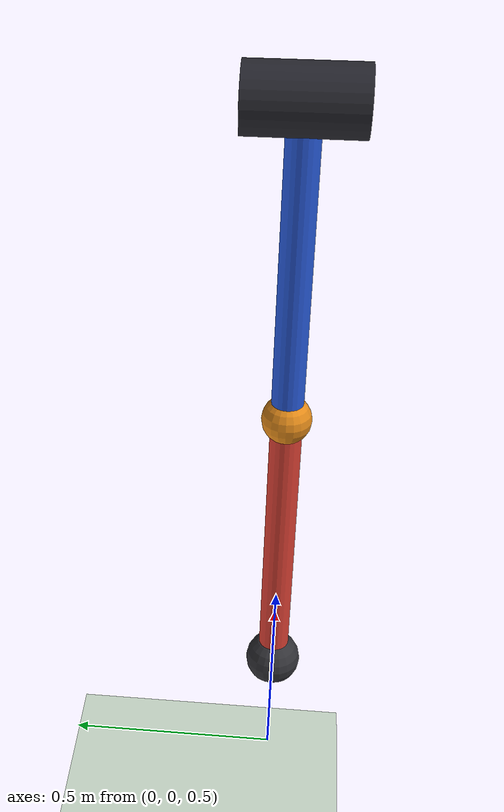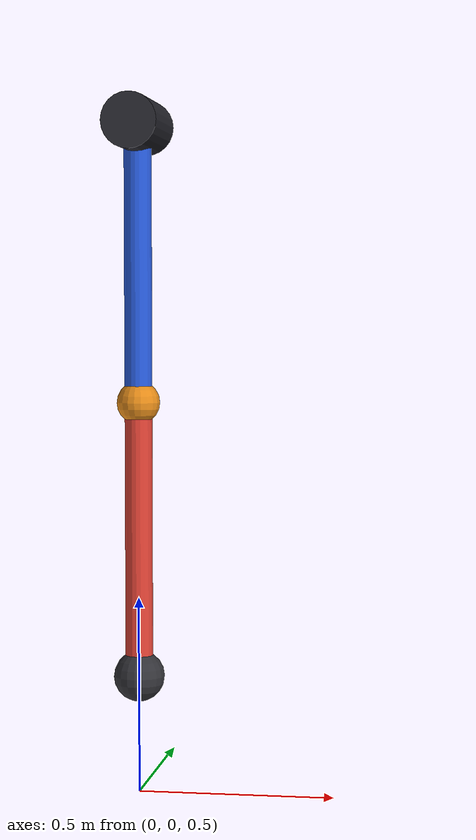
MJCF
<mujoco model="acrobot_energy_lqr">
    <option timestep="0.002" integrator="Euler" gravity="0 0 -9.81"/>

    <visual>
        <map znear="0.01" zfar="6"/>
    </visual>

    <worldbody>
        <light pos="0 -3 4" dir="0 1 -1" directional="true" castshadow="true"/>
        <geom name="floor" type="plane" size="3 3 0.1" rgba="0.82 0.88 0.82 1"/>
        <camera name="cam_side" pos="0 -5 2" quat="0.7071 0.7071 0 0"/>

        <body name="shoulder" pos="0 0 2.2">
            <geom name="shoulder_pivot" type="cylinder" size="0.07 0.12"
                  quat="0.7071 0.7071 0 0" rgba="0.15 0.15 0.18 1"/>
            <body name="link_1" pos="0 0 0">
                <joint name="shoulder_hinge" type="hinge" axis="0 1 0"
                       damping="0.02"/>
                <inertial pos="0 0 -0.7" mass="1.0"
                          diaginertia="1e-6 1e-6 1e-6"/>
                <geom name="link_1_visual" type="capsule" fromto="0 0 0 0 0 -0.7"
                      size="0.035" rgba="0.15 0.35 0.85 1"
                      contype="0" conaffinity="0"/>

                <body name="link_2" pos="0 0 -0.7">
                    <joint name="elbow_hinge" type="hinge" axis="0 1 0"
                           damping="0.02"/>
                    <inertial pos="0 0 -0.7" mass="1.0"
                              diaginertia="1e-6 1e-6 1e-6"/>
                    <geom name="elbow_marker" type="sphere" size="0.055"
                          rgba="0.9 0.55 0.1 1"/>
                    <geom name="link_2_visual" type="capsule" fromto="0 0 0 0 0 -0.7"
                          size="0.035" rgba="0.85 0.25 0.2 1"
                          contype="0" conaffinity="0"/>
                    <geom name="tip_mass" type="sphere" pos="0 0 -0.7" size="0.065"
                          rgba="0.2 0.2 0.22 1"/>
                </body>
            </body>
        </body>
    </worldbody>

    <actuator>
        <motor name="elbow_torque" joint="elbow_hinge" gear="1"
               ctrllimited="true" ctrlrange="-8 8"/>
    </actuator>

    <sensor>
        <jointpos name="shoulder_position" joint="shoulder_hinge"/>
        <jointpos name="elbow_position" joint="elbow_hinge"/>
        <jointvel name="shoulder_velocity" joint="shoulder_hinge"/>
        <jointvel name="elbow_velocity" joint="elbow_hinge"/>
        <actuatorfrc name="elbow_torque_sensor" actuator="elbow_torque"/>
    </sensor>
</mujoco>
